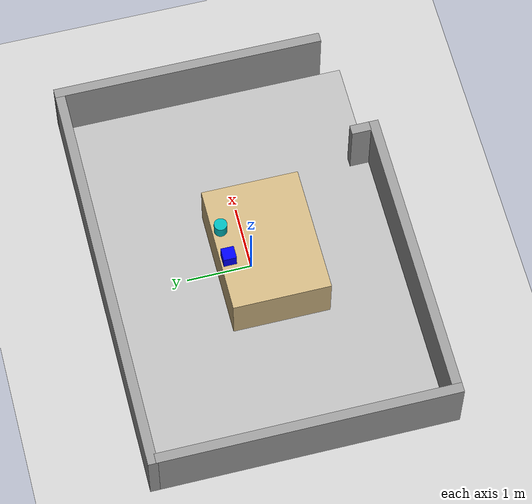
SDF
<?xml version="1.0"?>
<sdf version="1.6">
  <world name="my_custom_world">

    <!-- Load Ground Plane -->
    <include>
      <uri>model://ground_plane</uri>
    </include>

    <!-- Load Light -->
    <include>
      <uri>model://sun</uri>
    </include>

    <!-- item 1: cube_b at half size -->
    <include>
      <uri>model://cube_b</uri>
      <pose>-0.2 0.4 0.8 0 0 0</pose>
      <scale>0.5 0.5 0.5</scale>
    </include>

    <!-- item 2: cylinder_bg at half size -->
    <include>
      <uri>model://cylinder_bg</uri>
      <pose>0.3 0.4 0.8 0 0 0</pose>
      <scale>0.5 0.5 0.5</scale>
    </include>

    <!--wall -->
    <include>
      <uri>model://Workshop</uri>
      <pose>0 0 0 0 0 0</pose>
    </include>

    <!-- Black box at the origin, 0.128 × 0.128 × 0.5 m (base at z=0) -->
    <model name="grey_box">
      <static>true</static>
      <link name="box_link">
        <!-- center of box is at z=0.25, so its bottom sits on z=0 -->
        <pose>0 -0.22 0.4 0 0 0</pose>
        <collision name="box_collision">
          <geometry>
            <box>
              <size>2.0 1.5 0.8</size>
            </box>
          </geometry>
        </collision>
        <visual name="box_visual">
          <geometry>
            <box>
              <size>2.0 1.5 0.8</size>
            </box>
          </geometry>
          <material>
            <ambient>0.8 0.7 0.5 1</ambient>
            <diffuse>0.8 0.7 0.5 1</diffuse>
          </material>
        </visual>
      </link>
    </model>

  </world>
</sdf>

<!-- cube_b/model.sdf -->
<sdf version='1.6'>
  <model name='cube_b'>
    <link name='link_2'>
      <pose frame=''>0 0 0.1 0 -0 0</pose>
      <inertial>
        <mass>1</mass>
        <inertia>
          <ixx>0.166667</ixx>
          <ixy>0</ixy>
          <ixz>0</ixz>
          <iyy>0.166667</iyy>
          <iyz>0</iyz>
          <izz>0.166667</izz>
        </inertia>
        <pose frame=''>0 0 0 0 -0 0</pose>
      </inertial>
      <gravity>1</gravity>
      <self_collide>0</self_collide>
      <kinematic>0</kinematic>
      <visual name='visual'>
        <pose frame=''>0 0 0 0 -0 0</pose>
        <geometry>
          <box>
            <size>0.2 0.2 0.2</size>
          </box>
        </geometry>
        <material>
          <lighting>1</lighting>
          <script>
            <uri>file://media/materials/scripts/gazebo.material</uri>
            <name>Gazebo/Grey</name>
          </script>
          <ambient>0 0 1 1</ambient>
          <diffuse>0 0 1 1</diffuse>
          <specular>0 0 0 1</specular>
          <emissive>0 0 0 1</emissive>
          <shader type='vertex'>
            <normal_map>__default__</normal_map>
          </shader>
        </material>
        <cast_shadows>1</cast_shadows>
        <transparency>0</transparency>
      </visual>
      <collision name='collision'>
        <laser_retro>0</laser_retro>
        <max_contacts>10</max_contacts>
        <pose frame=''>0 0 0 0 -0 0</pose>
        <geometry>
          <box>
            <size>0.2 0.2 0.2</size>
          </box>
        </geometry>
        <surface>
          <friction>
            <ode>
              <mu>1</mu>
              <mu2>1</mu2>
              <fdir1>0 0 0</fdir1>
              <slip1>0</slip1>
              <slip2>0</slip2>
            </ode>
            <torsional>
              <coefficient>1</coefficient>
              <patch_radius>0</patch_radius>
              <surface_radius>0</surface_radius>
              <use_patch_radius>1</use_patch_radius>
              <ode>
                <slip>0</slip>
              </ode>
            </torsional>
          </friction>
          <bounce>
            <restitution_coefficient>0</restitution_coefficient>
            <threshold>1e+06</threshold>
          </bounce>
          <contact>
            <collide_without_contact>0</collide_without_contact>
            <collide_without_contact_bitmask>1</collide_without_contact_bitmask>
            <collide_bitmask>1</collide_bitmask>
            <ode>
              <soft_cfm>0</soft_cfm>
              <soft_erp>0.2</soft_erp>
              <kp>1e+13</kp>
              <kd>1</kd>
              <max_vel>0.01</max_vel>
              <min_depth>0</min_depth>
            </ode>
            <bullet>
              <split_impulse>1</split_impulse>
              <split_impulse_penetration_threshold>-0.01</split_impulse_penetration_threshold>
              <soft_cfm>0</soft_cfm>
              <soft_erp>0.2</soft_erp>
              <kp>1e+13</kp>
              <kd>1</kd>
            </bullet>
          </contact>
        </surface>
      </collision>
    </link>
    <static>1</static>
    <allow_auto_disable>1</allow_auto_disable>
  </model>
</sdf>

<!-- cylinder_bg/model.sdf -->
<sdf version='1.6'>
  <model name='cylinder_bg'>
    <link name='link_0'>
      <pose frame=''>0 0 0.1 0 -0 0</pose>
      <inertial>
        <mass>1</mass>
        <inertia>
          <ixx>0.145833</ixx>
          <ixy>0</ixy>
          <ixz>0</ixz>
          <iyy>0.145833</iyy>
          <iyz>0</iyz>
          <izz>0.125</izz>
        </inertia>
        <pose frame=''>0 0 0 0 -0 0</pose>
      </inertial>
      <gravity>1</gravity>
      <self_collide>0</self_collide>
      <kinematic>0</kinematic>
      <visual name='visual'>
        <pose frame=''>0 0 0 0 -0 0</pose>
        <geometry>
          <cylinder>
            <radius>0.1</radius>
            <length>0.2</length>
          </cylinder>
        </geometry>
        <material>
          <lighting>1</lighting>
          <script>
            <uri>file://media/materials/scripts/gazebo.material</uri>
            <name>Gazebo/Grey</name>
          </script>
          <ambient>0 0.71 0.722 1</ambient>
          <diffuse>0 0.71 0.722 1</diffuse>
          <specular>0 0 0 1</specular>
          <emissive>0 0 0 1</emissive>
          <shader type='vertex'>
            <normal_map>__default__</normal_map>
          </shader>
        </material>
        <cast_shadows>1</cast_shadows>
        <transparency>0</transparency>
      </visual>
      <collision name='collision'>
        <laser_retro>0</laser_retro>
        <max_contacts>10</max_contacts>
        <pose frame=''>0 0 0 0 -0 0</pose>
        <geometry>
          <cylinder>
            <radius>0.1</radius>
            <length>0.2</length>
          </cylinder>
        </geometry>
        <surface>
          <friction>
            <ode>
              <mu>1</mu>
              <mu2>1</mu2>
              <fdir1>0 0 0</fdir1>
              <slip1>0</slip1>
              <slip2>0</slip2>
            </ode>
            <torsional>
              <coefficient>1</coefficient>
              <patch_radius>0</patch_radius>
              <surface_radius>0</surface_radius>
              <use_patch_radius>1</use_patch_radius>
              <ode>
                <slip>0</slip>
              </ode>
            </torsional>
          </friction>
          <bounce>
            <restitution_coefficient>0</restitution_coefficient>
            <threshold>1e+06</threshold>
          </bounce>
          <contact>
            <collide_without_contact>0</collide_without_contact>
            <collide_without_contact_bitmask>1</collide_without_contact_bitmask>
            <collide_bitmask>1</collide_bitmask>
            <ode>
              <soft_cfm>0</soft_cfm>
              <soft_erp>0.2</soft_erp>
              <kp>1e+13</kp>
              <kd>1</kd>
              <max_vel>0.01</max_vel>
              <min_depth>0</min_depth>
            </ode>
            <bullet>
              <split_impulse>1</split_impulse>
              <split_impulse_penetration_threshold>-0.01</split_impulse_penetration_threshold>
              <soft_cfm>0</soft_cfm>
              <soft_erp>0.2</soft_erp>
              <kp>1e+13</kp>
              <kd>1</kd>
            </bullet>
          </contact>
        </surface>
      </collision>
    </link>
    <static>1</static>
    <allow_auto_disable>1</allow_auto_disable>
  </model>
</sdf>

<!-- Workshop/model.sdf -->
<sdf version='1.6'>
  <model name='Workshop'>

    <link name='Wall_10'>
      <collision name='Wall_10_Collision'>
        <geometry>
          <box>
            <size>6.26 0.15 1</size>
          </box>
        </geometry>
        <pose frame=''>0 0 0.5 0 -0 0</pose>
      </collision>
      <visual name='Wall_10_Visual'>
        <pose frame=''>0 0 0.5 0 -0 0</pose>
        <geometry>
          <box>
            <size>6.26 0.15 1</size>
          </box>
        </geometry>
        <material>
          <script>
            <uri>file://media/materials/scripts/gazebo.material</uri>
            <name>Gazebo/Grey</name>
          </script>
          <ambient>0 0 0 1</ambient>
        </material>
      </visual>
      <pose frame=''>-0.0745 2.24856 0 0 0 0</pose>
    </link>
    <link name='Wall_11'>
      <collision name='Wall_11_Collision'>
        <geometry>
          <box>
            <size>4.199944 0.15 1</size>
          </box>
        </geometry>
        <pose frame=''>0 0 0.5 0 -0 0</pose>
      </collision>
      <visual name='Wall_11_Visual'>
        <pose frame=''>0 0 0.5 0 -0 0</pose>
        <geometry>
          <box>
            <size>4.199944 0.15 1</size>
          </box>
        </geometry>
        <material>
          <script>
            <uri>file://media/materials/scripts/gazebo.material</uri>
            <name>Gazebo/Grey</name>
          </script>
          <ambient>0 0 0 1</ambient>
        </material>
      </visual>
      <pose frame=''>3.12000 0.223500 0 0 0 -1.5708</pose>
    </link>
    <link name='Wall_13'>
      <collision name='Wall_13_Collision'>
        <geometry>
          <box>
            <size>4.557060 0.15 1</size>
          </box>
        </geometry>
        <pose frame=''>0 0 0.5 0 -0 0</pose>
      </collision>
      <visual name='Wall_13_Visual'>
        <pose frame=''>0 0 0.5 0 -0 0</pose>
        <geometry>
          <box>
            <size>4.557060 0.15 1</size>
          </box>
        </geometry>
        <material>
          <script>
            <uri>file://media/materials/scripts/gazebo.material</uri>
            <name>Gazebo/Grey</name>
          </script>
          <ambient>0 0 0 1</ambient>
        </material>
      </visual>
      <pose frame=''>-3.129500 -0.075000 0 0 0 -1.5708</pose>
    </link>
    <link name='Wall_15'>
      <collision name='Wall_15_Collision'>
        <geometry>
          <box>
            <size>4.521 0.15 1</size>
          </box>
        </geometry>
        <pose frame=''>0 0 0.5 0 -0 0</pose>
      </collision>
      <visual name='Wall_15_Visual'>
        <pose frame=''>0 0 0.5 0 -0 0</pose>
        <geometry>
          <box>
            <size>4.521 0.15 1</size>
          </box>
        </geometry>
        <material>
          <script>
            <uri>file://media/materials/scripts/gazebo.material</uri>
            <name>Gazebo/Grey</name>
          </script>
          <ambient>0 0 0 1</ambient>
        </material>
      </visual>
      <pose frame=''>-0.794000 -2.278500 0 0 -0 0</pose>
    </link>
    <link name='Wall_17'>
      <collision name='Wall_17_Collision'>
        <geometry>
          <box>
            <size>0.302 0.15 1</size>
          </box>
        </geometry>
        <pose frame=''>0 0 0.5 0 -0 0</pose>
      </collision>
      <visual name='Wall_17_Visual'>
        <pose frame=''>0 0 0.5 0 -0 0</pose>
        <geometry>
          <box>
            <size>0.302 0.15 1</size>
          </box>
        </geometry>
        <material>
          <script>
            <uri>file://media/materials/scripts/gazebo.material</uri>
            <name>Gazebo/Grey</name>
          </script>
          <ambient>0 0 0 1</ambient>
        </material>
      </visual>
      <pose frame=''>1.392000 -2.057440 0 0 -0 1.5708</pose>
    </link>
    <link name='Wall_19'>
      <collision name='Wall_19_Collision'>
        <geometry>
          <box>
            <size>6.099 4.38 0.013</size>
          </box>
        </geometry>
        <pose frame=''>0 0 0.0065 0 -0 0</pose>
	 <surface>
          <friction>
            <ode>
              <mu>1</mu>
              <mu2>1</mu2>
            </ode>
          </friction>
	<bounce/>
            <contact>
              <ode/>
            </contact>
        </surface>
 	<max_contacts>10</max_contacts>
      </collision>
      <visual name='Wall_19_Visual'>
        <pose frame=''>0 0 0.0065 0 -0 0</pose>
        <geometry>
          <box>
            <size>6.099 4.38 0.013</size>
          </box>
        </geometry>
           <material>
          <script>
            <uri>model://Workshop/materials/scripts</uri>
            <uri>model://Workshop/materials/textures</uri>
            <name>rubber</name>
          </script>
        </material>
      </visual>
      <pose frame=''>-0.005116 -0.013556 0 0 -0 0</pose>
 <velocity_decay>
          <linear>0</linear>
          <angular>0</angular>
        </velocity_decay>
        <self_collide>0</self_collide>
        <kinematic>0</kinematic>
        <gravity>1</gravity>
    </link>
    <static>1</static>
  </model>
</sdf>
